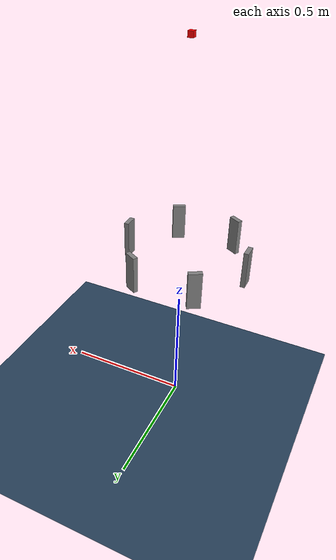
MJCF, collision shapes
<mujoco model="six">
  <compiler angle="radian" meshdir="assets" autolimits="true"/>
  <option integrator="implicitfast" gravity="0 0 -9.8"/>
  <default>
  <default class="mesh_collision">
      <geom type="box" contype="1" conaffinity="1" group="3"
            solimp="0.95 0.99 0.001" solref="0.004 1"
            size="0.009 0.025 0.073"/>  <!-- 每个碰撞盒半尺寸 -->
  </default>
  <default class="mesh_camera">
      <geom type="box" rgba="1 0 0 1" contype="1" conaffinity="1" group="3"
            solimp="0.95 0.99 0.001" solref="0.004 1"
            size="0.01 0.01 0.01"/>  <!-- 用于查看相机位置 -->
  </default>
      <default class="visual">
        <geom type="mesh" contype="0" conaffinity="0" group="2"/>
      </default>
  </default>

  <asset>
    <texture type="skybox" builtin="gradient" rgb1="0.3 0.5 0.7" rgb2="0 0 0" width="512" height="3072"/>
    <texture type="2d" name="groundplane" builtin="checker" mark="edge" rgb1="0.2 0.3 0.4" rgb2="0.1 0.2 0.3"
      markrgb="0.8 0.8 0.8" width="300" height="300"/>
    <mesh file="sixth.STL"/>
    <material name="gray" rgba="0.4627 0.4627 0.4627 1"/>
    <material name="groundplane" texture="groundplane" texuniform="true" texrepeat="5 5" reflectance="0.2"/>
  </asset>

  <worldbody>
    <body name="six" pos="-1 1.2 2" euler="3.14 0 0">
        <!--pos="-0.98 -1.2 -1.2"可以把没旋转的模型移到中心坐标；pos="-1 1.2 2" euler="3.14 0 0"可以挪动模型,0.2/小格-->
            <joint name="six_joint" type="free"/>
            <geom class="visual" mesh="sixth"/>
            <inertial mass="0.1" pos="0.98 1.2 1.2" diaginertia="0.0025599 0.0025599 0.0021942"/>
            <geom class="mesh_collision" name="col_side1" pos="1.225 1.2 1.27" euler="0 0 0.000"/>
            <geom class="mesh_collision" name="col_side2" pos="1.102 1.4013 1.27" euler="0 0 1.047"/>
            <geom class="mesh_collision" name="col_side3" pos="0.86 1.3993 1.27" euler="0 0 2.094"/>
            <geom class="mesh_collision" name="col_side4" pos="0.744 1.2 1.27" euler="0 0 3.142"/>
            <geom class="mesh_collision" name="col_side5" pos="0.86 0.985 1.27" euler="0 0 4.189"/>
            <geom class="mesh_collision" name="col_side6" pos="1.102 0.985 1.27" euler="0 0 5.236"/>
    </body>
    <geom name="floor" size="0 0 0.05" type="plane" material="groundplane"/>
    <light pos="0 0 1.5" dir="0 0 -1" directional="true"/>
        <body name="world_frame" pos="0 0 0">
            <geom name="X" type="cylinder" size="0.005" fromto="0 0 0 0.3 0 0" rgba="1 0 0 1" contype="0"
                  conaffinity="0"/>
            <geom name="Y" type="cylinder" size="0.005" fromto="0 0 0 0 0.3 0" rgba="0 1 0 1" contype="0"
                  conaffinity="0"/>
            <geom name="Z" type="cylinder" size="0.005" fromto="0 0 0 0 0 0.3" rgba="0 0 1 1" contype="0"
                  conaffinity="0"/>
        </body>
    <camera name="rgb_camera" pos="0 0 1.5" euler="0 0 0" fovy="60"/>
        <geom class="mesh_camera" pos="0 0 1.5" mass="0.01"/>
  </worldbody>

</mujoco>
